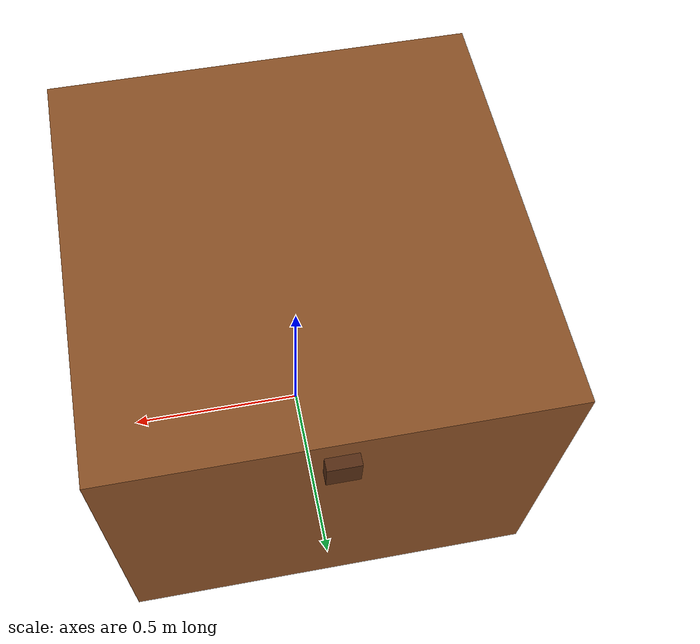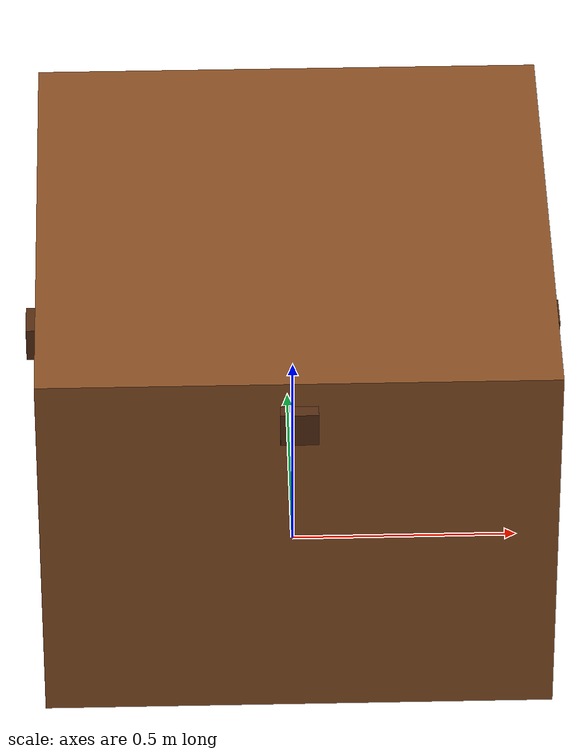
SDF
<?xml version="1.0"?>
<sdf version="1.6">
  <model name="wooden_crate">
    <static>true</static>
    <link name="crate">
      <pose>0 0 0.45 0 0 0</pose>
      <collision name="collision">
        <geometry>
          <box>
            <size>1.1 1.1 0.9</size>
          </box>
        </geometry>
      </collision>
      <visual name="body">
        <geometry>
          <box>
            <size>1.1 1.1 0.9</size>
          </box>
        </geometry>
        <material>
          <ambient>0.42 0.24 0.11 1</ambient>
          <diffuse>0.55 0.32 0.15 1</diffuse>
        </material>
      </visual>
      <visual name="slat_x">
        <pose>0 0 0.15 0 0 0</pose>
        <geometry>
          <box>
            <size>1.16 0.08 0.08</size>
          </box>
        </geometry>
        <material>
          <ambient>0.26 0.14 0.06 1</ambient>
          <diffuse>0.34 0.18 0.08 1</diffuse>
        </material>
      </visual>
      <visual name="slat_y">
        <pose>0 0 0.35 0 0 1.5708</pose>
        <geometry>
          <box>
            <size>1.16 0.08 0.08</size>
          </box>
        </geometry>
        <material>
          <ambient>0.26 0.14 0.06 1</ambient>
          <diffuse>0.34 0.18 0.08 1</diffuse>
        </material>
      </visual>
    </link>
  </model>
</sdf>
